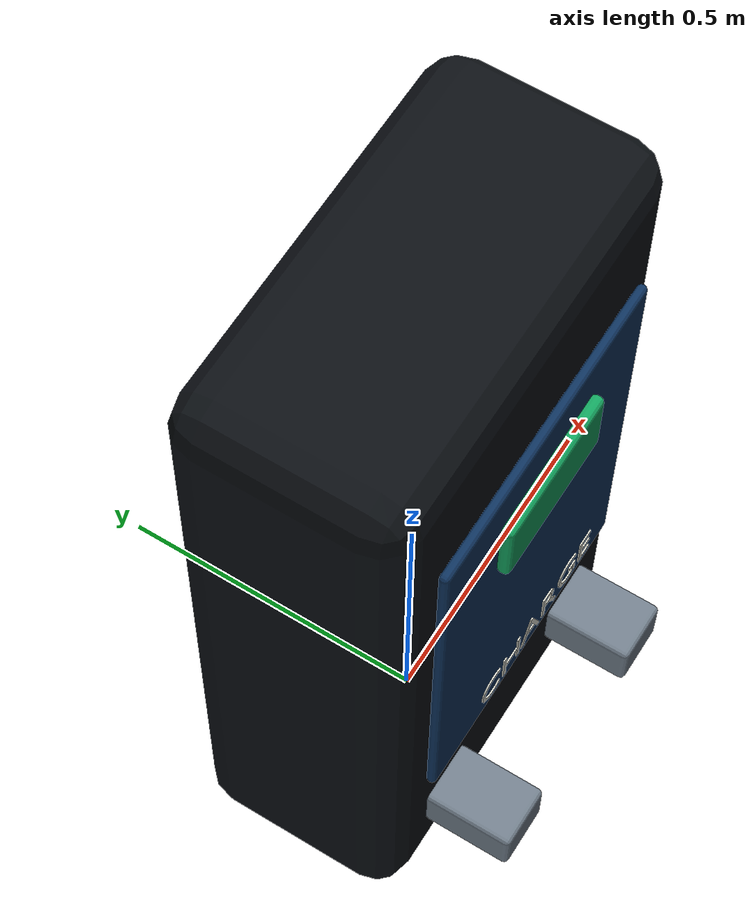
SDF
<?xml version='1.0' encoding='utf-8'?>
<sdf version="1.10">
  <model name="charge_dock">
    <static>true</static>
    <link name="body">
      <collision name="envelope">
        <pose>0 0 0.6 0 0 0</pose>
        <geometry>
          <box>
            <size>0.7 0.6 1.2</size>
          </box>
        </geometry>
      </collision>
      <visual name="dark">
        <geometry>
          <mesh>
            <uri>model://charge_dock/meshes/dark.obj</uri>
          </mesh>
        </geometry>
        <material>
          <diffuse>0.045 0.06 0.077 1</diffuse>
          <ambient>0.0315 0.041999999999999996 0.053899999999999997 1</ambient>
          <specular>0.1 0.1 0.1 1</specular>
        </material>
      </visual>
      <visual name="blue">
        <geometry>
          <mesh>
            <uri>model://charge_dock/meshes/blue.obj</uri>
          </mesh>
        </geometry>
        <material>
          <diffuse>0.055 0.2 0.37 1</diffuse>
          <ambient>0.0385 0.13999999999999999 0.259 1</ambient>
          <specular>0.1 0.1 0.1 1</specular>
        </material>
      </visual>
      <visual name="green">
        <geometry>
          <mesh>
            <uri>model://charge_dock/meshes/green.obj</uri>
          </mesh>
        </geometry>
        <material>
          <diffuse>0.07 0.64 0.37 1</diffuse>
          <ambient>0.049 0.44799999999999995 0.259 1</ambient>
          <specular>0.1 0.1 0.1 1</specular>
        </material>
      </visual>
      <visual name="steel">
        <geometry>
          <mesh>
            <uri>model://charge_dock/meshes/steel.obj</uri>
          </mesh>
        </geometry>
        <material>
          <diffuse>0.44 0.49 0.54 1</diffuse>
          <ambient>0.308 0.34299999999999997 0.378 1</ambient>
          <specular>0.4 0.4 0.4 1</specular>
        </material>
      </visual>
      <visual name="label">
        <geometry>
          <mesh>
            <uri>model://charge_dock/meshes/label.obj</uri>
          </mesh>
        </geometry>
        <material>
          <diffuse>0.92 0.92 0.87 1</diffuse>
          <ambient>0.644 0.644 0.609 1</ambient>
          <specular>0.1 0.1 0.1 1</specular>
        </material>
      </visual>
    </link>
  </model>
</sdf>
